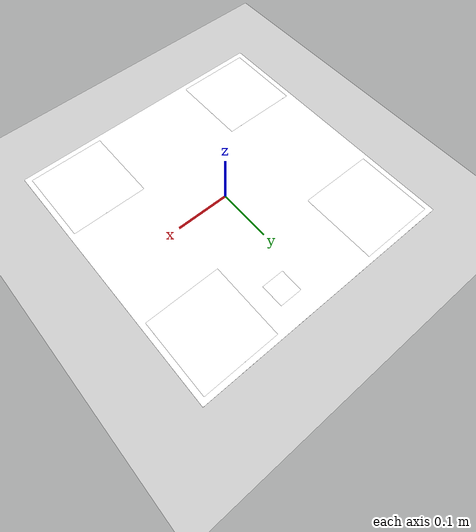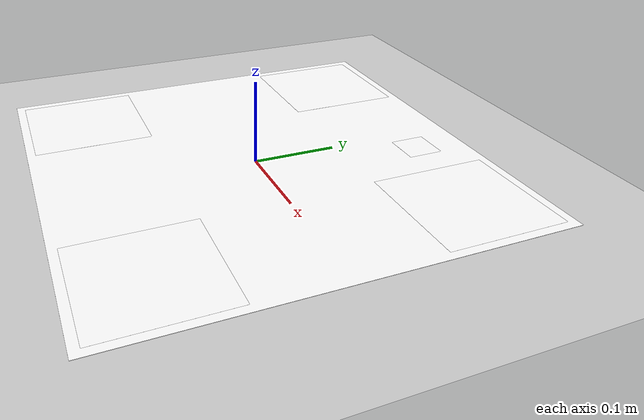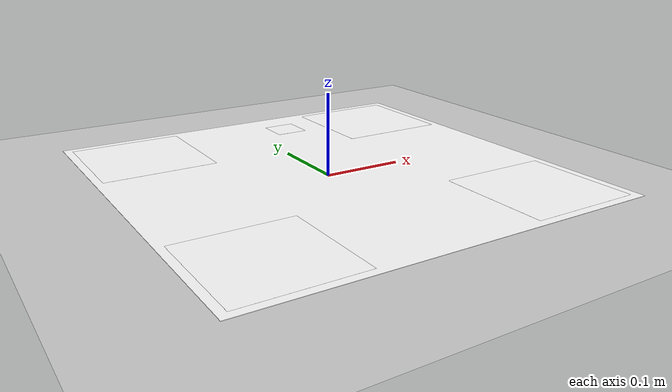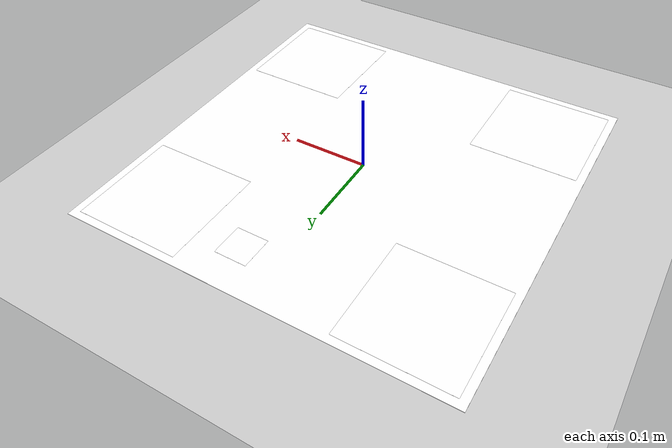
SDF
<?xml version="1.0" ?>
<sdf version="1.9">
  <world name="aruco_takeoff_world">
    <physics type="ode">
      <max_step_size>0.004</max_step_size>
      <real_time_factor>1.0</real_time_factor>
      <real_time_update_rate>250</real_time_update_rate>
    </physics>
    <gravity>0 0 -9.8</gravity>
    <magnetic_field>6e-06 2.3e-05 -4.2e-05</magnetic_field>
    <atmosphere type="adiabatic"/>
    <scene>
      <grid>false</grid>
      <ambient>0.4 0.4 0.4 1</ambient>
      <background>0.7 0.7 0.7 1</background>
      <shadows>true</shadows>
    </scene>

    <!-- Ground Plane (inline, Gz-sim compatible) -->
    <model name="ground_plane">
      <static>true</static>
      <link name="link">
        <collision name="collision">
          <geometry>
            <plane>
              <normal>0 0 1</normal>
              <size>1 1</size>
            </plane>
          </geometry>
          <surface>
            <friction>
              <ode/>
            </friction>
            <bounce/>
            <contact/>
          </surface>
        </collision>
        <visual name="visual">
          <geometry>
            <plane>
              <normal>0 0 1</normal>
              <size>500 500</size>
            </plane>
          </geometry>
          <material>
            <ambient>0.8 0.8 0.8 1</ambient>
            <diffuse>0.8 0.8 0.8 1</diffuse>
            <specular>0.8 0.8 0.8 1</specular>
          </material>
        </visual>
      </link>
    </model>

    <!-- Sun Light (inline, Gz-sim compatible) -->
    <light name="sunUTC" type="directional">
      <pose>0 0 500 0 0 0</pose>
      <cast_shadows>true</cast_shadows>
      <intensity>1</intensity>
      <direction>0.001 0.625 -0.78</direction>
      <diffuse>0.904 0.904 0.904 1</diffuse>
      <specular>0.271 0.271 0.271 1</specular>
      <attenuation>
        <range>2000</range>
        <linear>0</linear>
        <constant>1</constant>
        <quadratic>0</quadratic>
      </attenuation>
    </light>

    <!-- Spherical coordinates (match PX4 default home position) -->
    <spherical_coordinates>
      <surface_model>EARTH_WGS84</surface_model>
      <world_frame_orientation>ENU</world_frame_orientation>
      <latitude_deg>47.397971057728974</latitude_deg>
      <longitude_deg>8.546163739800146</longitude_deg>
      <elevation>0</elevation>
    </spherical_coordinates>

    <include>
      <uri>model://arucotag</uri>
      <pose>0 0 0.005 0 0 0</pose>
    </include>
  </world>
</sdf>

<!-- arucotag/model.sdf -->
<sdf version='1.9'>
  <model name='arucotag'>
    <static>true</static>
    <pose>0 0 0.001 0 0 0</pose>
    <link name='base'>
      <visual name='background_visual'>
        <geometry>
          <plane>
            <normal>0 0 1</normal>
            <size>0.5 0.5</size>
          </plane>
        </geometry>
        <material>
          <diffuse>1 1 1 1</diffuse>
          <specular>0.2 0.2 0.2 1</specular>
        </material>
      </visual>
      <visual name='tag_0_visual'>
        <pose>0.17 0.17 0.0002 0 0 0</pose>
        <geometry>
          <plane>
            <normal>0 0 1</normal>
            <size>0.14 0.14</size>
          </plane>
        </geometry>
        <material>
          <diffuse>1 1 1 1</diffuse>
          <specular>0.4 0.4 0.4 1</specular>
          <pbr>
            <metal>
              <albedo_map>model://arucotag/aruco_0.png</albedo_map>
            </metal>
          </pbr>
        </material>
      </visual>
      <visual name='tag_1_visual'>
        <pose>-0.17 0.17 0.0002 0 0 0</pose>
        <geometry>
          <plane>
            <normal>0 0 1</normal>
            <size>0.14 0.14</size>
          </plane>
        </geometry>
        <material>
          <diffuse>1 1 1 1</diffuse>
          <specular>0.4 0.4 0.4 1</specular>
          <pbr>
            <metal>
              <albedo_map>model://arucotag/aruco_1.png</albedo_map>
            </metal>
          </pbr>
        </material>
      </visual>
      <visual name='tag_2_visual'>
        <pose>-0.17 -0.17 0.0002 0 0 0</pose>
        <geometry>
          <plane>
            <normal>0 0 1</normal>
            <size>0.14 0.14</size>
          </plane>
        </geometry>
        <material>
          <diffuse>1 1 1 1</diffuse>
          <specular>0.4 0.4 0.4 1</specular>
          <pbr>
            <metal>
              <albedo_map>model://arucotag/aruco_2.png</albedo_map>
            </metal>
          </pbr>
        </material>
      </visual>
      <visual name='tag_3_visual'>
        <pose>0.17 -0.17 0.0002 0 0 0</pose>
        <geometry>
          <plane>
            <normal>0 0 1</normal>
            <size>0.14 0.14</size>
          </plane>
        </geometry>
        <material>
          <diffuse>1 1 1 1</diffuse>
          <specular>0.4 0.4 0.4 1</specular>
          <pbr>
            <metal>
              <albedo_map>model://arucotag/aruco_3.png</albedo_map>
            </metal>
          </pbr>
        </material>
      </visual>
      <visual name='tag_4_visual'>
        <pose>0.0 0.11 0.0002 0 0 0</pose>
        <geometry>
          <plane>
            <normal>0 0 1</normal>
            <size>0.07 0.07</size>
          </plane>
        </geometry>
        <material>
          <diffuse>1 1 1 1</diffuse>
          <specular>0.4 0.4 0.4 1</specular>
          <pbr>
            <metal>
              <albedo_map>model://arucotag/aruco_4.png</albedo_map>
            </metal>
          </pbr>
        </material>
      </visual>
      <visual name='tag_5_visual'>
        <pose>-0.11 0.0 0.0002 0 0 0</pose>
        <geometry>
          <plane>
            <normal>0 0 1</normal>
            <size>0.07 0.07</size>
          </plane>
        </geometry>
        <material>
          <diffuse>1 1 1 1</diffuse>
          <specular>0.4 0.4 0.4 1</specular>
          <pbr>
            <metal>
              <albedo_map>model://arucotag/aruco_5.png</albedo_map>
            </metal>
          </pbr>
        </material>
      </visual>
      <visual name='tag_6_visual'>
        <pose>0.0 -0.11 0.0002 0 0 0</pose>
        <geometry>
          <plane>
            <normal>0 0 1</normal>
            <size>0.07 0.07</size>
          </plane>
        </geometry>
        <material>
          <diffuse>1 1 1 1</diffuse>
          <specular>0.4 0.4 0.4 1</specular>
          <pbr>
            <metal>
              <albedo_map>model://arucotag/aruco_6.png</albedo_map>
            </metal>
          </pbr>
        </material>
      </visual>
      <visual name='tag_7_visual'>
        <pose>0.11 0.0 0.0002 0 0 0</pose>
        <geometry>
          <plane>
            <normal>0 0 1</normal>
            <size>0.07 0.07</size>
          </plane>
        </geometry>
        <material>
          <diffuse>1 1 1 1</diffuse>
          <specular>0.4 0.4 0.4 1</specular>
          <pbr>
            <metal>
              <albedo_map>model://arucotag/aruco_7.png</albedo_map>
            </metal>
          </pbr>
        </material>
      </visual>
      <visual name='tag_8_visual'>
        <pose>0.0 0.045 0.0002 0 0 0</pose>
        <geometry>
          <plane>
            <normal>0 0 1</normal>
            <size>0.025 0.025</size>
          </plane>
        </geometry>
        <material>
          <diffuse>1 1 1 1</diffuse>
          <specular>0.4 0.4 0.4 1</specular>
          <pbr>
            <metal>
              <albedo_map>model://arucotag/aruco_8.png</albedo_map>
            </metal>
          </pbr>
        </material>
      </visual>
      <visual name='tag_9_visual'>
        <pose>-0.045 0.0 0.0002 0 0 0</pose>
        <geometry>
          <plane>
            <normal>0 0 1</normal>
            <size>0.025 0.025</size>
          </plane>
        </geometry>
        <material>
          <diffuse>1 1 1 1</diffuse>
          <specular>0.4 0.4 0.4 1</specular>
          <pbr>
            <metal>
              <albedo_map>model://arucotag/aruco_9.png</albedo_map>
            </metal>
          </pbr>
        </material>
      </visual>
      <visual name='tag_10_visual'>
        <pose>0.0 -0.045 0.0002 0 0 0</pose>
        <geometry>
          <plane>
            <normal>0 0 1</normal>
            <size>0.025 0.025</size>
          </plane>
        </geometry>
        <material>
          <diffuse>1 1 1 1</diffuse>
          <specular>0.4 0.4 0.4 1</specular>
          <pbr>
            <metal>
              <albedo_map>model://arucotag/aruco_10.png</albedo_map>
            </metal>
          </pbr>
        </material>
      </visual>
      <visual name='tag_11_visual'>
        <pose>0.045 0.0 0.0002 0 0 0</pose>
        <geometry>
          <plane>
            <normal>0 0 1</normal>
            <size>0.025 0.025</size>
          </plane>
        </geometry>
        <material>
          <diffuse>1 1 1 1</diffuse>
          <specular>0.4 0.4 0.4 1</specular>
          <pbr>
            <metal>
              <albedo_map>model://arucotag/aruco_11.png</albedo_map>
            </metal>
          </pbr>
        </material>
      </visual>
      <visual name='tag_12_visual'>
        <pose>0.0 0.0 0.0002 0 0 0</pose>
        <geometry>
          <plane>
            <normal>0 0 1</normal>
            <size>0.018 0.018</size>
          </plane>
        </geometry>
        <material>
          <diffuse>1 1 1 1</diffuse>
          <specular>0.4 0.4 0.4 1</specular>
          <pbr>
            <metal>
              <albedo_map>model://arucotag/aruco_12.png</albedo_map>
            </metal>
          </pbr>
        </material>
      </visual>
      <!-- Small, flat drawing of the positive board axes.  It sits in the
           marker-free gap between the two large +Y-side tags. -->
      <visual name='board_positive_axes_drawing'>
        <pose>0.045 0.190 0.0005 0 0 0</pose>
        <geometry>
          <plane>
            <normal>0 0 1</normal>
            <size>0.042 0.042</size>
          </plane>
        </geometry>
        <material>
          <diffuse>1 1 1 1</diffuse>
          <specular>0 0 0 1</specular>
          <pbr>
            <metal>
              <albedo_map>model://arucotag/board_axes_xy.png</albedo_map>
            </metal>
          </pbr>
        </material>
      </visual>
    </link>
  </model>
</sdf>
